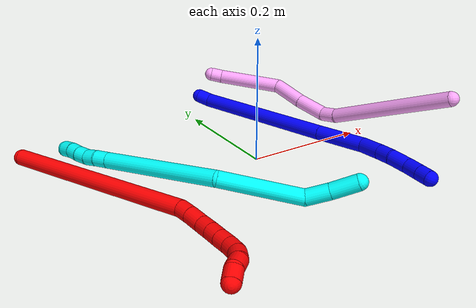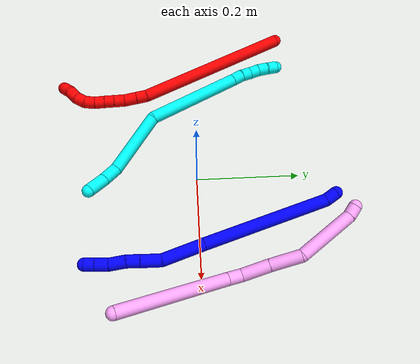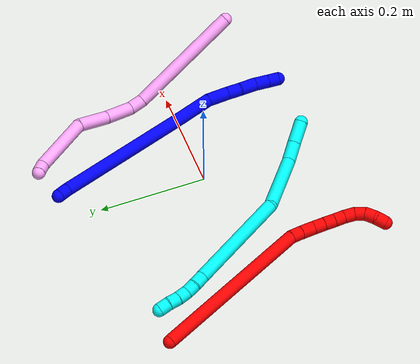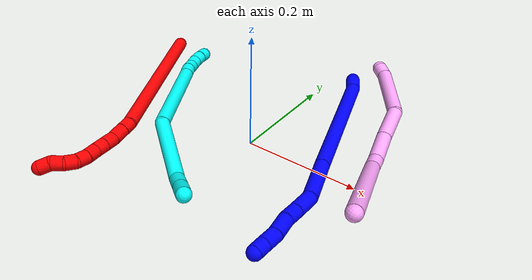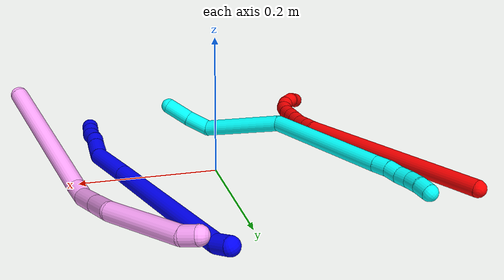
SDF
<sdf version="1.7">
 <world name="default">
  <plugin name="TubeGeneratorPlugin" filename="libtube_generator_plugin.so"/>
  <model name="photoneo_s_sensor">
   <static>1</static>
   <pose>0 0 2 1.57079 1.57079 3.14159</pose>
   <link name="link">
    <inertial><mass>0.1</mass></inertial>
    <sensor name="sensor" type="depth">
     <update_rate>30</update_rate>
     <camera>
      <horizontal_fov>1.22</horizontal_fov>
      <image><width>1920</width><height>1200</height><format>B8G8R8</format></image>
      <clip><near>0.1</near><far>4</far></clip>
      <depth_camera><output>points</output></depth_camera>
     </camera>
     <plugin name="camera_plugin" filename="libgazebo_ros_depth_camera.so">
      <baseline>0.2</baseline>
      <alwaysOn>1</alwaysOn>
      <updateRate>0.0</updateRate>
      <cameraName>camera_ir</cameraName>
      <imageTopicName>/camera/color/image_raw</imageTopicName>
      <cameraInfoTopicName>/camera/color/camera_info</cameraInfoTopicName>
      <depthImageTopicName>/camera/depth/image_raw</depthImageTopicName>
      <depthImageCameraInfoTopicName>/camera/depth/camera_info</depthImageCameraInfoTopicName>
      <pointCloudTopicName>/camera/depth/points</pointCloudTopicName>
      <frameName>fr_optical</frameName>
      <pointCloudCutoff>0.1</pointCloudCutoff>
      <pointCloudCutoffMax>2.0</pointCloudCutoffMax>
      <distortionK1>0</distortionK1>
      <distortionK2>0</distortionK2>
      <distortionK3>0</distortionK3>
      <distortionT1>0</distortionT1>
      <distortionT2>0</distortionT2>
      <CxPrime>0</CxPrime>
      <Cx>0</Cx>
      <Cy>0</Cy>
      <focalLength>0</focalLength>
      <hackBaseline>0</hackBaseline>
     </plugin>
    </sensor>
   </link>
  </model>
  <gravity>0 0 -9.8</gravity>
  <magnetic_field>6e-06 2.3e-05 -4.2e-05</magnetic_field>
  <atmosphere type="adiabatic"/>
  <physics name="default_physics" default="0" type="ode">
   <max_step_size>0.003</max_step_size>
   <real_time_factor>1</real_time_factor>
   <real_time_update_rate>1000</real_time_update_rate>
   <max_contacts>10000</max_contacts>
   <ode>
    <solver>
     <type>quick</type>
     <iters>100</iters>
     <sor>1.3</sor>
     <use_dynamic_moi_rescaling>0</use_dynamic_moi_rescaling>
    </solver>
    <constraints>
     <contact_max_correcting_vel>0</contact_max_correcting_vel>
     <contact_surface_layer>0.001</contact_surface_layer>
     <cfm>0</cfm>
     <erp>0.2</erp>
    </constraints>
   </ode>
  </physics>
  <scene><ambient>0.4 0.4 0.4 1</ambient><background>0.7 0.7 0.7 1</background><shadows>0</shadows></scene>
  <audio><device>default</device></audio>
  <spherical_coordinates>
   <surface_model>EARTH_WGS84</surface_model>
   <latitude_deg>0</latitude_deg>
   <longitude_deg>0</longitude_deg>
   <elevation>0</elevation>
   <heading_deg>0</heading_deg>
  </spherical_coordinates>
  <model name="bin">
   <static>1</static>
   <link name="bottom">
    <collision name="collision-bottom">
     <pose>0 0 -0.01 0 -0 0</pose>
     <geometry><box><size>0.8 0.6 0.02</size></box></geometry>
     <surface>
      <friction><ode><mu>100</mu><mu2>100</mu2></ode></friction>
      <contact><collide_bitmask>65535</collide_bitmask></contact>
     </surface>
    </collision>
   </link>
   <link name="west_wall">
    <collision name="collision-west_wall">
     <pose>-0.41 0 0.1 0 -0 0</pose>
     <geometry><box><size>0.02 0.6 0.2</size></box></geometry>
     <surface>
      <friction><ode><mu>100</mu><mu2>100</mu2></ode></friction>
      <contact><collide_bitmask>65535</collide_bitmask></contact>
     </surface>
    </collision>
   </link>
   <link name="east_wall">
    <collision name="collision-east_wall">
     <pose>0.41 0 0.1 0 -0 0</pose>
     <geometry><box><size>0.02 0.6 0.2</size></box></geometry>
     <surface>
      <friction><ode><mu>100</mu><mu2>100</mu2></ode></friction>
      <contact><collide_bitmask>65535</collide_bitmask></contact>
     </surface>
    </collision>
   </link>
   <link name="south_wall">
    <collision name="collision-south_wall">
     <pose>0 -0.31 0.1 0 -0 0</pose>
     <geometry><box><size>0.8 0.02 0.2</size></box></geometry>
     <surface>
      <friction><ode><mu>100</mu><mu2>100</mu2></ode></friction>
      <contact><collide_bitmask>65535</collide_bitmask></contact>
     </surface>
    </collision>
   </link>
   <link name="north_wall">
    <collision name="collision-north_wall">
     <pose>0 0.31 0.1 0 -0 0</pose>
     <geometry><box><size>0.8 0.02 0.2</size></box></geometry>
     <surface>
      <friction><ode><mu>100</mu><mu2>100</mu2></ode></friction>
      <contact><collide_bitmask>65535</collide_bitmask></contact>
     </surface>
    </collision>
   </link>
  </model>
  <model name="1">
   <static>0</static>
   <link name="1">
    <collision name="collision-cylinder-e_1_1_4">
     <pose>0.005361 -0.010749 0.000368 1.53658 0.462376 0.447342</pose>
     <geometry><cylinder><radius>0.0125</radius><length>0.024034</length></cylinder></geometry>
     <surface>
      <friction><ode><mu>1.16</mu><mu2>1.16</mu2><slip1>0</slip1><slip2>0</slip2></ode></friction>
      <contact><ode><kp>1e+06</kp><kd>1</kd><max_vel>0</max_vel><min_depth>0.001</min_depth></ode></contact>
     </surface>
    </collision>
    <visual name="visual-cylinder-e_1_1_4">
     <pose>0.005361 -0.010749 0.000368 1.53658 0.462376 0.447342</pose>
     <geometry><cylinder><radius>0.0125</radius><length>0.024034</length></cylinder></geometry>
     <material><ambient>0 0 1 1</ambient></material>
    </visual>
    <collision name="collision-cylinder-e_2_4_5">
     <pose>0.031872 -0.142898 0.021209 1.40373 0.170136 0.143946</pose>
     <geometry><cylinder><radius>0.0125</radius><length>0.249836</length></cylinder></geometry>
     <surface>
      <friction><ode><mu>1.16</mu><mu2>1.16</mu2><slip1>0</slip1><slip2>0</slip2></ode></friction>
      <contact><ode><kp>1e+06</kp><kd>1</kd><max_vel>0</max_vel><min_depth>0.001</min_depth></ode></contact>
     </surface>
    </collision>
    <visual name="visual-cylinder-e_2_4_5">
     <pose>0.031872 -0.142898 0.021209 1.40373 0.170136 0.143946</pose>
     <geometry><cylinder><radius>0.0125</radius><length>0.249836</length></cylinder></geometry>
     <material><ambient>0 0 1 1</ambient></material>
    </visual>
    <collision name="collision-cylinder-e_3_5_6">
     <pose>0.060671 -0.304733 0.048929 1.39345 0.184093 0.154161</pose>
     <geometry><cylinder><radius>0.0125</radius><length>0.083569</length></cylinder></geometry>
     <surface>
      <friction><ode><mu>1.16</mu><mu2>1.16</mu2><slip1>0</slip1><slip2>0</slip2></ode></friction>
      <contact><ode><kp>1e+06</kp><kd>1</kd><max_vel>0</max_vel><min_depth>0.001</min_depth></ode></contact>
     </surface>
    </collision>
    <visual name="visual-cylinder-e_3_5_6">
     <pose>0.060671 -0.304733 0.048929 1.39345 0.184093 0.154161</pose>
     <geometry><cylinder><radius>0.0125</radius><length>0.083569</length></cylinder></geometry>
     <material><ambient>0 0 1 1</ambient></material>
    </visual>
    <collision name="collision-cylinder-e_4_6_7">
     <pose>0.065763 -0.364668 0.05827 1.46387 -0.129669 -0.116527</pose>
     <geometry><cylinder><radius>0.0125</radius><length>0.039559</length></cylinder></geometry>
     <surface>
      <friction><ode><mu>1.16</mu><mu2>1.16</mu2><slip1>0</slip1><slip2>0</slip2></ode></friction>
      <contact><ode><kp>1e+06</kp><kd>1</kd><max_vel>0</max_vel><min_depth>0.001</min_depth></ode></contact>
     </surface>
    </collision>
    <visual name="visual-cylinder-e_4_6_7">
     <pose>0.065763 -0.364668 0.05827 1.46387 -0.129669 -0.116527</pose>
     <geometry><cylinder><radius>0.0125</radius><length>0.039559</length></cylinder></geometry>
     <material><ambient>0 0 1 1</ambient></material>
    </visual>
    <collision name="collision-cylinder-e_5_7_8">
     <pose>0.061307 -0.396482 0.061361 1.48987 -0.152446 -0.140623</pose>
     <geometry><cylinder><radius>0.0125</radius><length>0.024995</length></cylinder></geometry>
     <surface>
      <friction><ode><mu>1.16</mu><mu2>1.16</mu2><slip1>0</slip1><slip2>0</slip2></ode></friction>
      <contact><ode><kp>1e+06</kp><kd>1</kd><max_vel>0</max_vel><min_depth>0.001</min_depth></ode></contact>
     </surface>
    </collision>
    <visual name="visual-cylinder-e_5_7_8">
     <pose>0.061307 -0.396482 0.061361 1.48987 -0.152446 -0.140623</pose>
     <geometry><cylinder><radius>0.0125</radius><length>0.024995</length></cylinder></geometry>
     <material><ambient>0 0 1 1</ambient></material>
    </visual>
    <collision name="collision-cylinder-e_6_8_9">
     <pose>0.059817 -0.424702 0.062346 1.57167 0.025596 0.025618</pose>
     <geometry><cylinder><radius>0.0125</radius><length>0.031825</length></cylinder></geometry>
     <surface>
      <friction><ode><mu>1.16</mu><mu2>1.16</mu2><slip1>0</slip1><slip2>0</slip2></ode></friction>
      <contact><ode><kp>1e+06</kp><kd>1</kd><max_vel>0</max_vel><min_depth>0.001</min_depth></ode></contact>
     </surface>
    </collision>
    <visual name="visual-cylinder-e_6_8_9">
     <pose>0.059817 -0.424702 0.062346 1.57167 0.025596 0.025618</pose>
     <geometry><cylinder><radius>0.0125</radius><length>0.031825</length></cylinder></geometry>
     <material><ambient>0 0 1 1</ambient></material>
    </visual>
    <collision name="collision-cylinder-e_7_9_10">
     <pose>0.058121 -0.453328 0.062349 1.56946 -0.163841 -0.163623</pose>
     <geometry><cylinder><radius>0.0125</radius><length>0.025783</length></cylinder></geometry>
     <surface>
      <friction><ode><mu>1.16</mu><mu2>1.16</mu2><slip1>0</slip1><slip2>0</slip2></ode></friction>
      <contact><ode><kp>1e+06</kp><kd>1</kd><max_vel>0</max_vel><min_depth>0.001</min_depth></ode></contact>
     </surface>
    </collision>
    <visual name="visual-cylinder-e_7_9_10">
     <pose>0.058121 -0.453328 0.062349 1.56946 -0.163841 -0.163623</pose>
     <geometry><cylinder><radius>0.0125</radius><length>0.025783</length></cylinder></geometry>
     <material><ambient>0 0 1 1</ambient></material>
    </visual>
    <collision name="collision-cylinder-e_8_10_2">
     <pose>0.054496 -0.476131 0.062365 1.57093 -0.149831 -0.149852</pose>
     <geometry><cylinder><radius>0.0125</radius><length>0.020398</length></cylinder></geometry>
     <surface>
      <friction><ode><mu>1.16</mu><mu2>1.16</mu2><slip1>0</slip1><slip2>0</slip2></ode></friction>
      <contact><ode><kp>1e+06</kp><kd>1</kd><max_vel>0</max_vel><min_depth>0.001</min_depth></ode></contact>
     </surface>
    </collision>
    <visual name="visual-cylinder-e_8_10_2">
     <pose>0.054496 -0.476131 0.062365 1.57093 -0.149831 -0.149852</pose>
     <geometry><cylinder><radius>0.0125</radius><length>0.020398</length></cylinder></geometry>
     <material><ambient>0 0 1 1</ambient></material>
    </visual>
    <collision name="collision-sphere-2">
     <pose>0.052974 -0.486216 0.062363 0 -0 0</pose>
     <geometry><sphere><radius>0.0125</radius></sphere></geometry>
     <surface>
      <friction><ode><mu>1.16</mu><mu2>1.16</mu2><slip1>0</slip1><slip2>0</slip2></ode></friction>
      <contact><ode><kp>1e+06</kp><kd>1</kd><max_vel>0</max_vel><min_depth>0.001</min_depth></ode></contact>
     </surface>
    </collision>
    <visual name="visual-sphere-2">
     <pose>0.052974 -0.486216 0.062363 0 -0 0</pose>
     <geometry><sphere><radius>0.0125</radius></sphere></geometry>
     <material><ambient>0 0 1 1</ambient></material>
    </visual>
    <collision name="collision-sphere-10">
     <pose>0.056018 -0.466047 0.062366 0 -0 0</pose>
     <geometry><sphere><radius>0.0125</radius></sphere></geometry>
     <surface>
      <friction><ode><mu>1.16</mu><mu2>1.16</mu2><slip1>0</slip1><slip2>0</slip2></ode></friction>
      <contact><ode><kp>1e+06</kp><kd>1</kd><max_vel>0</max_vel><min_depth>0.001</min_depth></ode></contact>
     </surface>
    </collision>
    <visual name="visual-sphere-10">
     <pose>0.056018 -0.466047 0.062366 0 -0 0</pose>
     <geometry><sphere><radius>0.0125</radius></sphere></geometry>
     <material><ambient>0 0 1 1</ambient></material>
    </visual>
    <collision name="collision-sphere-9">
     <pose>0.060224 -0.440609 0.062332 0 -0 0</pose>
     <geometry><sphere><radius>0.0125</radius></sphere></geometry>
     <surface>
      <friction><ode><mu>1.16</mu><mu2>1.16</mu2><slip1>0</slip1><slip2>0</slip2></ode></friction>
      <contact><ode><kp>1e+06</kp><kd>1</kd><max_vel>0</max_vel><min_depth>0.001</min_depth></ode></contact>
     </surface>
    </collision>
    <visual name="visual-sphere-9">
     <pose>0.060224 -0.440609 0.062332 0 -0 0</pose>
     <geometry><sphere><radius>0.0125</radius></sphere></geometry>
     <material><ambient>0 0 1 1</ambient></material>
    </visual>
    <collision name="collision-sphere-4">
     <pose>0.010721 -0.021498 0.000736 0 -0 0</pose>
     <geometry><sphere><radius>0.0125</radius></sphere></geometry>
     <surface>
      <friction><ode><mu>1.16</mu><mu2>1.16</mu2><slip1>0</slip1><slip2>0</slip2></ode></friction>
      <contact><ode><kp>1e+06</kp><kd>1</kd><max_vel>0</max_vel><min_depth>0.001</min_depth></ode></contact>
     </surface>
    </collision>
    <visual name="visual-sphere-4">
     <pose>0.010721 -0.021498 0.000736 0 -0 0</pose>
     <geometry><sphere><radius>0.0125</radius></sphere></geometry>
     <material><ambient>0 0 1 1</ambient></material>
    </visual>
    <collision name="collision-sphere-1">
     <geometry><sphere><radius>0.0125</radius></sphere></geometry>
     <surface>
      <friction><ode><mu>1.16</mu><mu2>1.16</mu2><slip1>0</slip1><slip2>0</slip2></ode></friction>
      <contact><ode><kp>1e+06</kp><kd>1</kd><max_vel>0</max_vel><min_depth>0.001</min_depth></ode></contact>
     </surface>
    </collision>
    <visual name="visual-sphere-1">
     <geometry><sphere><radius>0.0125</radius></sphere></geometry>
     <material><ambient>0 0 1 1</ambient></material>
    </visual>
    <collision name="collision-sphere-8">
     <pose>0.059409 -0.408795 0.06236 0 -0 0</pose>
     <geometry><sphere><radius>0.0125</radius></sphere></geometry>
     <surface>
      <friction><ode><mu>1.16</mu><mu2>1.16</mu2><slip1>0</slip1><slip2>0</slip2></ode></friction>
      <contact><ode><kp>1e+06</kp><kd>1</kd><max_vel>0</max_vel><min_depth>0.001</min_depth></ode></contact>
     </surface>
    </collision>
    <visual name="visual-sphere-8">
     <pose>0.059409 -0.408795 0.06236 0 -0 0</pose>
     <geometry><sphere><radius>0.0125</radius></sphere></geometry>
     <material><ambient>0 0 1 1</ambient></material>
    </visual>
    <collision name="collision-sphere-5">
     <pose>0.053023 -0.264298 0.041682 0 -0 0</pose>
     <geometry><sphere><radius>0.0125</radius></sphere></geometry>
     <surface>
      <friction><ode><mu>1.16</mu><mu2>1.16</mu2><slip1>0</slip1><slip2>0</slip2></ode></friction>
      <contact><ode><kp>1e+06</kp><kd>1</kd><max_vel>0</max_vel><min_depth>0.001</min_depth></ode></contact>
     </surface>
    </collision>
    <visual name="visual-sphere-5">
     <pose>0.053023 -0.264298 0.041682 0 -0 0</pose>
     <geometry><sphere><radius>0.0125</radius></sphere></geometry>
     <material><ambient>0 0 1 1</ambient></material>
    </visual>
    <collision name="collision-sphere-6">
     <pose>0.06832 -0.345167 0.056176 0 -0 0</pose>
     <geometry><sphere><radius>0.0125</radius></sphere></geometry>
     <surface>
      <friction><ode><mu>1.16</mu><mu2>1.16</mu2><slip1>0</slip1><slip2>0</slip2></ode></friction>
      <contact><ode><kp>1e+06</kp><kd>1</kd><max_vel>0</max_vel><min_depth>0.001</min_depth></ode></contact>
     </surface>
    </collision>
    <visual name="visual-sphere-6">
     <pose>0.06832 -0.345167 0.056176 0 -0 0</pose>
     <geometry><sphere><radius>0.0125</radius></sphere></geometry>
     <material><ambient>0 0 1 1</ambient></material>
    </visual>
    <collision name="collision-sphere-7">
     <pose>0.063205 -0.38417 0.060363 0 -0 0</pose>
     <geometry><sphere><radius>0.0125</radius></sphere></geometry>
     <surface>
      <friction><ode><mu>1.16</mu><mu2>1.16</mu2><slip1>0</slip1><slip2>0</slip2></ode></friction>
      <contact><ode><kp>1e+06</kp><kd>1</kd><max_vel>0</max_vel><min_depth>0.001</min_depth></ode></contact>
     </surface>
    </collision>
    <visual name="visual-sphere-7">
     <pose>0.063205 -0.38417 0.060363 0 -0 0</pose>
     <geometry><sphere><radius>0.0125</radius></sphere></geometry>
     <material><ambient>0 0 1 1</ambient></material>
    </visual>
    <inertial>
     <pose>0.043619 -0.241357 0.036198 0 -0 0</pose>
     <mass>0.5</mass>
     <inertia>
      <ixx>0.001542</ixx>
      <ixy>0</ixy>
      <ixz>0</ixz>
      <iyy>0.000413</iyy>
      <iyz>0</iyz>
      <izz>0.001116</izz>
     </inertia>
    </inertial>
   </link>
   <pose>0.046275 0.26545 0.01687 0.090725 0.408177 0.131622</pose>
  </model>
  <model name="2">
   <static>0</static>
   <link name="2">
    <collision name="collision-cylinder-e_1_1_4">
     <pose>0.061916 -0.116553 -0.082321 2.18574 0.409393 0.762384</pose>
     <geometry><cylinder><radius>0.0125</radius><length>0.311094</length></cylinder></geometry>
     <surface>
      <friction><ode><mu>1.16</mu><mu2>1.16</mu2><slip1>0</slip1><slip2>0</slip2></ode></friction>
      <contact><ode><kp>1e+06</kp><kd>1</kd><max_vel>0</max_vel><min_depth>0.001</min_depth></ode></contact>
     </surface>
    </collision>
    <visual name="visual-cylinder-e_1_1_4">
     <pose>0.061916 -0.116553 -0.082321 2.18574 0.409393 0.762384</pose>
     <geometry><cylinder><radius>0.0125</radius><length>0.311094</length></cylinder></geometry>
     <material><ambient>1 0 0 1</ambient></material>
    </visual>
    <collision name="collision-cylinder-e_2_4_5">
     <pose>0.128527 -0.238697 -0.17208 2.497 0.467362 1.23852</pose>
     <geometry><cylinder><radius>0.0125</radius><length>0.020845</length></cylinder></geometry>
     <surface>
      <friction><ode><mu>1.16</mu><mu2>1.16</mu2><slip1>0</slip1><slip2>0</slip2></ode></friction>
      <contact><ode><kp>1e+06</kp><kd>1</kd><max_vel>0</max_vel><min_depth>0.001</min_depth></ode></contact>
     </surface>
    </collision>
    <visual name="visual-cylinder-e_2_4_5">
     <pose>0.128527 -0.238697 -0.17208 2.497 0.467362 1.23852</pose>
     <geometry><cylinder><radius>0.0125</radius><length>0.020845</length></cylinder></geometry>
     <material><ambient>1 0 0 1</ambient></material>
    </visual>
    <collision name="collision-cylinder-e_3_5_6">
     <pose>0.139488 -0.250776 -0.188716 2.52726 0.507859 1.37146</pose>
     <geometry><cylinder><radius>0.0125</radius><length>0.025766</length></cylinder></geometry>
     <surface>
      <friction><ode><mu>1.16</mu><mu2>1.16</mu2><slip1>0</slip1><slip2>0</slip2></ode></friction>
      <contact><ode><kp>1e+06</kp><kd>1</kd><max_vel>0</max_vel><min_depth>0.001</min_depth></ode></contact>
     </surface>
    </collision>
    <visual name="visual-cylinder-e_3_5_6">
     <pose>0.139488 -0.250776 -0.188716 2.52726 0.507859 1.37146</pose>
     <geometry><cylinder><radius>0.0125</radius><length>0.025766</length></cylinder></geometry>
     <material><ambient>1 0 0 1</ambient></material>
    </visual>
    <collision name="collision-cylinder-e_4_6_7">
     <pose>0.14972 -0.262336 -0.206417 2.60385 0.381136 1.22159</pose>
     <geometry><cylinder><radius>0.0125</radius><length>0.02133</length></cylinder></geometry>
     <surface>
      <friction><ode><mu>1.16</mu><mu2>1.16</mu2><slip1>0</slip1><slip2>0</slip2></ode></friction>
      <contact><ode><kp>1e+06</kp><kd>1</kd><max_vel>0</max_vel><min_depth>0.001</min_depth></ode></contact>
     </surface>
    </collision>
    <visual name="visual-cylinder-e_4_6_7">
     <pose>0.14972 -0.262336 -0.206417 2.60385 0.381136 1.22159</pose>
     <geometry><cylinder><radius>0.0125</radius><length>0.02133</length></cylinder></geometry>
     <material><ambient>1 0 0 1</ambient></material>
    </visual>
    <collision name="collision-cylinder-e_5_7_8">
     <pose>0.157588 -0.272002 -0.222978 2.62328 0.398007 1.30062</pose>
     <geometry><cylinder><radius>0.0125</radius><length>0.020126</length></cylinder></geometry>
     <surface>
      <friction><ode><mu>1.16</mu><mu2>1.16</mu2><slip1>0</slip1><slip2>0</slip2></ode></friction>
      <contact><ode><kp>1e+06</kp><kd>1</kd><max_vel>0</max_vel><min_depth>0.001</min_depth></ode></contact>
     </surface>
    </collision>
    <visual name="visual-cylinder-e_5_7_8">
     <pose>0.157588 -0.272002 -0.222978 2.62328 0.398007 1.30062</pose>
     <geometry><cylinder><radius>0.0125</radius><length>0.020126</length></cylinder></geometry>
     <material><ambient>1 0 0 1</ambient></material>
    </visual>
    <collision name="collision-cylinder-e_6_8_9">
     <pose>0.165439 -0.281411 -0.238871 2.59072 0.405829 1.25854</pose>
     <geometry><cylinder><radius>0.0125</radius><length>0.020019</length></cylinder></geometry>
     <surface>
      <friction><ode><mu>1.16</mu><mu2>1.16</mu2><slip1>0</slip1><slip2>0</slip2></ode></friction>
      <contact><ode><kp>1e+06</kp><kd>1</kd><max_vel>0</max_vel><min_depth>0.001</min_depth></ode></contact>
     </surface>
    </collision>
    <visual name="visual-cylinder-e_6_8_9">
     <pose>0.165439 -0.281411 -0.238871 2.59072 0.405829 1.25854</pose>
     <geometry><cylinder><radius>0.0125</radius><length>0.020019</length></cylinder></geometry>
     <material><ambient>1 0 0 1</ambient></material>
    </visual>
    <collision name="collision-cylinder-e_7_9_10">
     <pose>0.17241 -0.2901 -0.255872 2.74152 0.294619 1.26359</pose>
     <geometry><cylinder><radius>0.0125</radius><length>0.020796</length></cylinder></geometry>
     <surface>
      <friction><ode><mu>1.16</mu><mu2>1.16</mu2><slip1>0</slip1><slip2>0</slip2></ode></friction>
      <contact><ode><kp>1e+06</kp><kd>1</kd><max_vel>0</max_vel><min_depth>0.001</min_depth></ode></contact>
     </surface>
    </collision>
    <visual name="visual-cylinder-e_7_9_10">
     <pose>0.17241 -0.2901 -0.255872 2.74152 0.294619 1.26359</pose>
     <geometry><cylinder><radius>0.0125</radius><length>0.020796</length></cylinder></geometry>
     <material><ambient>1 0 0 1</ambient></material>
    </visual>
    <collision name="collision-cylinder-e_8_10_11">
     <pose>0.176909 -0.294258 -0.27493 3.11306 0.148371 2.76226</pose>
     <geometry><cylinder><radius>0.0125</radius><length>0.020016</length></cylinder></geometry>
     <surface>
      <friction><ode><mu>1.16</mu><mu2>1.16</mu2><slip1>0</slip1><slip2>0</slip2></ode></friction>
      <contact><ode><kp>1e+06</kp><kd>1</kd><max_vel>0</max_vel><min_depth>0.001</min_depth></ode></contact>
     </surface>
    </collision>
    <visual name="visual-cylinder-e_8_10_11">
     <pose>0.176909 -0.294258 -0.27493 3.11306 0.148371 2.76226</pose>
     <geometry><cylinder><radius>0.0125</radius><length>0.020016</length></cylinder></geometry>
     <material><ambient>1 0 0 1</ambient></material>
    </visual>
    <collision name="collision-cylinder-e_9_11_12">
     <pose>0.179163 -0.291232 -0.294231 -2.80346 0.07753 -0.446835</pose>
     <geometry><cylinder><radius>0.0125</radius><length>0.020004</length></cylinder></geometry>
     <surface>
      <friction><ode><mu>1.16</mu><mu2>1.16</mu2><slip1>0</slip1><slip2>0</slip2></ode></friction>
      <contact><ode><kp>1e+06</kp><kd>1</kd><max_vel>0</max_vel><min_depth>0.001</min_depth></ode></contact>
     </surface>
    </collision>
    <visual name="visual-cylinder-e_9_11_12">
     <pose>0.179163 -0.291232 -0.294231 -2.80346 0.07753 -0.446835</pose>
     <geometry><cylinder><radius>0.0125</radius><length>0.020004</length></cylinder></geometry>
     <material><ambient>1 0 0 1</ambient></material>
    </visual>
    <collision name="collision-cylinder-e_10_12_2">
     <pose>0.184646 -0.284558 -0.311797 -2.7503 0.490057 -1.80123</pose>
     <geometry><cylinder><radius>0.0125</radius><length>0.020005</length></cylinder></geometry>
     <surface>
      <friction><ode><mu>1.16</mu><mu2>1.16</mu2><slip1>0</slip1><slip2>0</slip2></ode></friction>
      <contact><ode><kp>1e+06</kp><kd>1</kd><max_vel>0</max_vel><min_depth>0.001</min_depth></ode></contact>
     </surface>
    </collision>
    <visual name="visual-cylinder-e_10_12_2">
     <pose>0.184646 -0.284558 -0.311797 -2.7503 0.490057 -1.80123</pose>
     <geometry><cylinder><radius>0.0125</radius><length>0.020005</length></cylinder></geometry>
     <material><ambient>1 0 0 1</ambient></material>
    </visual>
    <collision name="collision-sphere-2">
     <pose>0.189354 -0.281193 -0.319955 0 -0 0</pose>
     <geometry><sphere><radius>0.0125</radius></sphere></geometry>
     <surface>
      <friction><ode><mu>1.16</mu><mu2>1.16</mu2><slip1>0</slip1><slip2>0</slip2></ode></friction>
      <contact><ode><kp>1e+06</kp><kd>1</kd><max_vel>0</max_vel><min_depth>0.001</min_depth></ode></contact>
     </surface>
    </collision>
    <visual name="visual-sphere-2">
     <pose>0.189354 -0.281193 -0.319955 0 -0 0</pose>
     <geometry><sphere><radius>0.0125</radius></sphere></geometry>
     <material><ambient>1 0 0 1</ambient></material>
    </visual>
    <collision name="collision-sphere-12">
     <pose>0.179938 -0.287924 -0.303638 0 -0 0</pose>
     <geometry><sphere><radius>0.0125</radius></sphere></geometry>
     <surface>
      <friction><ode><mu>1.16</mu><mu2>1.16</mu2><slip1>0</slip1><slip2>0</slip2></ode></friction>
      <contact><ode><kp>1e+06</kp><kd>1</kd><max_vel>0</max_vel><min_depth>0.001</min_depth></ode></contact>
     </surface>
    </collision>
    <visual name="visual-sphere-12">
     <pose>0.179938 -0.287924 -0.303638 0 -0 0</pose>
     <geometry><sphere><radius>0.0125</radius></sphere></geometry>
     <material><ambient>1 0 0 1</ambient></material>
    </visual>
    <collision name="collision-sphere-11">
     <pose>0.178388 -0.29454 -0.284824 0 -0 0</pose>
     <geometry><sphere><radius>0.0125</radius></sphere></geometry>
     <surface>
      <friction><ode><mu>1.16</mu><mu2>1.16</mu2><slip1>0</slip1><slip2>0</slip2></ode></friction>
      <contact><ode><kp>1e+06</kp><kd>1</kd><max_vel>0</max_vel><min_depth>0.001</min_depth></ode></contact>
     </surface>
    </collision>
    <visual name="visual-sphere-11">
     <pose>0.178388 -0.29454 -0.284824 0 -0 0</pose>
     <geometry><sphere><radius>0.0125</radius></sphere></geometry>
     <material><ambient>1 0 0 1</ambient></material>
    </visual>
    <collision name="collision-sphere-10">
     <pose>0.175429 -0.293975 -0.265036 0 -0 0</pose>
     <geometry><sphere><radius>0.0125</radius></sphere></geometry>
     <surface>
      <friction><ode><mu>1.16</mu><mu2>1.16</mu2><slip1>0</slip1><slip2>0</slip2></ode></friction>
      <contact><ode><kp>1e+06</kp><kd>1</kd><max_vel>0</max_vel><min_depth>0.001</min_depth></ode></contact>
     </surface>
    </collision>
    <visual name="visual-sphere-10">
     <pose>0.175429 -0.293975 -0.265036 0 -0 0</pose>
     <geometry><sphere><radius>0.0125</radius></sphere></geometry>
     <material><ambient>1 0 0 1</ambient></material>
    </visual>
    <collision name="collision-sphere-9">
     <pose>0.169391 -0.286225 -0.246707 0 -0 0</pose>
     <geometry><sphere><radius>0.0125</radius></sphere></geometry>
     <surface>
      <friction><ode><mu>1.16</mu><mu2>1.16</mu2><slip1>0</slip1><slip2>0</slip2></ode></friction>
      <contact><ode><kp>1e+06</kp><kd>1</kd><max_vel>0</max_vel><min_depth>0.001</min_depth></ode></contact>
     </surface>
    </collision>
    <visual name="visual-sphere-9">
     <pose>0.169391 -0.286225 -0.246707 0 -0 0</pose>
     <geometry><sphere><radius>0.0125</radius></sphere></geometry>
     <material><ambient>1 0 0 1</ambient></material>
    </visual>
    <collision name="collision-sphere-4">
     <pose>0.123832 -0.233106 -0.164642 0 -0 0</pose>
     <geometry><sphere><radius>0.0125</radius></sphere></geometry>
     <surface>
      <friction><ode><mu>1.16</mu><mu2>1.16</mu2><slip1>0</slip1><slip2>0</slip2></ode></friction>
      <contact><ode><kp>1e+06</kp><kd>1</kd><max_vel>0</max_vel><min_depth>0.001</min_depth></ode></contact>
     </surface>
    </collision>
    <visual name="visual-sphere-4">
     <pose>0.123832 -0.233106 -0.164642 0 -0 0</pose>
     <geometry><sphere><radius>0.0125</radius></sphere></geometry>
     <material><ambient>1 0 0 1</ambient></material>
    </visual>
    <collision name="collision-sphere-1">
     <geometry><sphere><radius>0.0125</radius></sphere></geometry>
     <surface>
      <friction><ode><mu>1.16</mu><mu2>1.16</mu2><slip1>0</slip1><slip2>0</slip2></ode></friction>
      <contact><ode><kp>1e+06</kp><kd>1</kd><max_vel>0</max_vel><min_depth>0.001</min_depth></ode></contact>
     </surface>
    </collision>
    <visual name="visual-sphere-1">
     <geometry><sphere><radius>0.0125</radius></sphere></geometry>
     <material><ambient>1 0 0 1</ambient></material>
    </visual>
    <collision name="collision-sphere-8">
     <pose>0.161488 -0.276597 -0.231036 0 -0 0</pose>
     <geometry><sphere><radius>0.0125</radius></sphere></geometry>
     <surface>
      <friction><ode><mu>1.16</mu><mu2>1.16</mu2><slip1>0</slip1><slip2>0</slip2></ode></friction>
      <contact><ode><kp>1e+06</kp><kd>1</kd><max_vel>0</max_vel><min_depth>0.001</min_depth></ode></contact>
     </surface>
    </collision>
    <visual name="visual-sphere-8">
     <pose>0.161488 -0.276597 -0.231036 0 -0 0</pose>
     <geometry><sphere><radius>0.0125</radius></sphere></geometry>
     <material><ambient>1 0 0 1</ambient></material>
    </visual>
    <collision name="collision-sphere-5">
     <pose>0.133223 -0.244288 -0.179517 0 -0 0</pose>
     <geometry><sphere><radius>0.0125</radius></sphere></geometry>
     <surface>
      <friction><ode><mu>1.16</mu><mu2>1.16</mu2><slip1>0</slip1><slip2>0</slip2></ode></friction>
      <contact><ode><kp>1e+06</kp><kd>1</kd><max_vel>0</max_vel><min_depth>0.001</min_depth></ode></contact>
     </surface>
    </collision>
    <visual name="visual-sphere-5">
     <pose>0.133223 -0.244288 -0.179517 0 -0 0</pose>
     <geometry><sphere><radius>0.0125</radius></sphere></geometry>
     <material><ambient>1 0 0 1</ambient></material>
    </visual>
    <collision name="collision-sphere-6">
     <pose>0.145753 -0.257265 -0.197915 0 -0 0</pose>
     <geometry><sphere><radius>0.0125</radius></sphere></geometry>
     <surface>
      <friction><ode><mu>1.16</mu><mu2>1.16</mu2><slip1>0</slip1><slip2>0</slip2></ode></friction>
      <contact><ode><kp>1e+06</kp><kd>1</kd><max_vel>0</max_vel><min_depth>0.001</min_depth></ode></contact>
     </surface>
    </collision>
    <visual name="visual-sphere-6">
     <pose>0.145753 -0.257265 -0.197915 0 -0 0</pose>
     <geometry><sphere><radius>0.0125</radius></sphere></geometry>
     <material><ambient>1 0 0 1</ambient></material>
    </visual>
    <collision name="collision-sphere-7">
     <pose>0.153688 -0.267406 -0.21492 0 -0 0</pose>
     <geometry><sphere><radius>0.0125</radius></sphere></geometry>
     <surface>
      <friction><ode><mu>1.16</mu><mu2>1.16</mu2><slip1>0</slip1><slip2>0</slip2></ode></friction>
      <contact><ode><kp>1e+06</kp><kd>1</kd><max_vel>0</max_vel><min_depth>0.001</min_depth></ode></contact>
     </surface>
    </collision>
    <visual name="visual-sphere-7">
     <pose>0.153688 -0.267406 -0.21492 0 -0 0</pose>
     <geometry><sphere><radius>0.0125</radius></sphere></geometry>
     <material><ambient>1 0 0 1</ambient></material>
    </visual>
    <inertial>
     <pose>0.099232 -0.175681 -0.141357 0 -0 0</pose>
     <mass>0.5</mass>
     <inertia>
      <ixx>0.003294</ixx>
      <ixy>0</ixy>
      <ixz>0</ixz>
      <iyy>0.001097</iyy>
      <iyz>0</iyz>
      <izz>0.000859</izz>
     </inertia>
    </inertial>
   </link>
   <pose>-0.32141 0.184084 0.012292 -2.26447 1.1486 -1.20263</pose>
  </model>
  <model name="3">
   <static>0</static>
   <link name="3">
    <collision name="collision-cylinder-e_1_1_4">
     <pose>-0.002316 0.004378 -0.020471 -2.93088 -0.110182 0.961397</pose>
     <geometry><cylinder><radius>0.0125</radius><length>0.042123</length></cylinder></geometry>
     <surface>
      <friction><ode><mu>1.16</mu><mu2>1.16</mu2><slip1>0</slip1><slip2>0</slip2></ode></friction>
      <contact><ode><kp>1e+06</kp><kd>1</kd><max_vel>0</max_vel><min_depth>0.001</min_depth></ode></contact>
     </surface>
    </collision>
    <visual name="visual-cylinder-e_1_1_4">
     <pose>-0.002316 0.004378 -0.020471 -2.93088 -0.110182 0.961397</pose>
     <geometry><cylinder><radius>0.0125</radius><length>0.042123</length></cylinder></geometry>
     <material><ambient>0.003922 1 0.996078 1</ambient></material>
    </visual>
    <collision name="collision-cylinder-e_2_4_5">
     <pose>-0.008019 0.013602 -0.058581 -2.8735 -0.183079 1.19531</pose>
     <geometry><cylinder><radius>0.0125</radius><length>0.037207</length></cylinder></geometry>
     <surface>
      <friction><ode><mu>1.16</mu><mu2>1.16</mu2><slip1>0</slip1><slip2>0</slip2></ode></friction>
      <contact><ode><kp>1e+06</kp><kd>1</kd><max_vel>0</max_vel><min_depth>0.001</min_depth></ode></contact>
     </surface>
    </collision>
    <visual name="visual-cylinder-e_2_4_5">
     <pose>-0.008019 0.013602 -0.058581 -2.8735 -0.183079 1.19531</pose>
     <geometry><cylinder><radius>0.0125</radius><length>0.037207</length></cylinder></geometry>
     <material><ambient>0.003922 1 0.996078 1</ambient></material>
    </visual>
    <collision name="collision-cylinder-e_3_5_6">
     <pose>-0.0389 0.057071 -0.118141 -2.39711 -0.449421 1.05926</pose>
     <geometry><cylinder><radius>0.0125</radius><length>0.126571</length></cylinder></geometry>
     <surface>
      <friction><ode><mu>1.16</mu><mu2>1.16</mu2><slip1>0</slip1><slip2>0</slip2></ode></friction>
      <contact><ode><kp>1e+06</kp><kd>1</kd><max_vel>0</max_vel><min_depth>0.001</min_depth></ode></contact>
     </surface>
    </collision>
    <visual name="visual-cylinder-e_3_5_6">
     <pose>-0.0389 0.057071 -0.118141 -2.39711 -0.449421 1.05926</pose>
     <geometry><cylinder><radius>0.0125</radius><length>0.126571</length></cylinder></geometry>
     <material><ambient>0.003922 1 0.996078 1</ambient></material>
    </visual>
    <collision name="collision-cylinder-e_4_6_7">
     <pose>-0.06285 0.154994 -0.235381 -2.47464 0.036952 -0.106582</pose>
     <geometry><cylinder><radius>0.0125</radius><length>0.191853</length></cylinder></geometry>
     <surface>
      <friction><ode><mu>1.16</mu><mu2>1.16</mu2><slip1>0</slip1><slip2>0</slip2></ode></friction>
      <contact><ode><kp>1e+06</kp><kd>1</kd><max_vel>0</max_vel><min_depth>0.001</min_depth></ode></contact>
     </surface>
    </collision>
    <visual name="visual-cylinder-e_4_6_7">
     <pose>-0.06285 0.154994 -0.235381 -2.47464 0.036952 -0.106582</pose>
     <geometry><cylinder><radius>0.0125</radius><length>0.191853</length></cylinder></geometry>
     <material><ambient>0.003922 1 0.996078 1</ambient></material>
    </visual>
    <collision name="collision-cylinder-e_5_7_8">
     <pose>-0.059227 0.221246 -0.319318 -2.46262 0.007134 -0.020199</pose>
     <geometry><cylinder><radius>0.0125</radius><length>0.022147</length></cylinder></geometry>
     <surface>
      <friction><ode><mu>1.16</mu><mu2>1.16</mu2><slip1>0</slip1><slip2>0</slip2></ode></friction>
      <contact><ode><kp>1e+06</kp><kd>1</kd><max_vel>0</max_vel><min_depth>0.001</min_depth></ode></contact>
     </surface>
    </collision>
    <visual name="visual-cylinder-e_5_7_8">
     <pose>-0.059227 0.221246 -0.319318 -2.46262 0.007134 -0.020199</pose>
     <geometry><cylinder><radius>0.0125</radius><length>0.022147</length></cylinder></geometry>
     <material><ambient>0.003922 1 0.996078 1</ambient></material>
    </visual>
    <collision name="collision-cylinder-e_6_8_9">
     <pose>-0.057463 0.233926 -0.335985 -2.52332 0.168978 -0.518423</pose>
     <geometry><cylinder><radius>0.0125</radius><length>0.020043</length></cylinder></geometry>
     <surface>
      <friction><ode><mu>1.16</mu><mu2>1.16</mu2><slip1>0</slip1><slip2>0</slip2></ode></friction>
      <contact><ode><kp>1e+06</kp><kd>1</kd><max_vel>0</max_vel><min_depth>0.001</min_depth></ode></contact>
     </surface>
    </collision>
    <visual name="visual-cylinder-e_6_8_9">
     <pose>-0.057463 0.233926 -0.335985 -2.52332 0.168978 -0.518423</pose>
     <geometry><cylinder><radius>0.0125</radius><length>0.020043</length></cylinder></geometry>
     <material><ambient>0.003922 1 0.996078 1</ambient></material>
    </visual>
    <collision name="collision-cylinder-e_7_9_10">
     <pose>-0.054241 0.246717 -0.350967 -2.34669 0.154021 -0.363568</pose>
     <geometry><cylinder><radius>0.0125</radius><length>0.020032</length></cylinder></geometry>
     <surface>
      <friction><ode><mu>1.16</mu><mu2>1.16</mu2><slip1>0</slip1><slip2>0</slip2></ode></friction>
      <contact><ode><kp>1e+06</kp><kd>1</kd><max_vel>0</max_vel><min_depth>0.001</min_depth></ode></contact>
     </surface>
    </collision>
    <visual name="visual-cylinder-e_7_9_10">
     <pose>-0.054241 0.246717 -0.350967 -2.34669 0.154021 -0.363568</pose>
     <geometry><cylinder><radius>0.0125</radius><length>0.020032</length></cylinder></geometry>
     <material><ambient>0.003922 1 0.996078 1</ambient></material>
    </visual>
    <collision name="collision-cylinder-e_8_10_11">
     <pose>-0.049916 0.261028 -0.364207 -2.28711 0.282409 -0.605263</pose>
     <geometry><cylinder><radius>0.0125</radius><length>0.020008</length></cylinder></geometry>
     <surface>
      <friction><ode><mu>1.16</mu><mu2>1.16</mu2><slip1>0</slip1><slip2>0</slip2></ode></friction>
      <contact><ode><kp>1e+06</kp><kd>1</kd><max_vel>0</max_vel><min_depth>0.001</min_depth></ode></contact>
     </surface>
    </collision>
    <visual name="visual-cylinder-e_8_10_11">
     <pose>-0.049916 0.261028 -0.364207 -2.28711 0.282409 -0.605263</pose>
     <geometry><cylinder><radius>0.0125</radius><length>0.020008</length></cylinder></geometry>
     <material><ambient>0.003922 1 0.996078 1</ambient></material>
    </visual>
    <collision name="collision-cylinder-e_9_11_2">
     <pose>-0.044041 0.274403 -0.377801 -2.44231 0.31356 -0.818153</pose>
     <geometry><cylinder><radius>0.0125</radius><length>0.020016</length></cylinder></geometry>
     <surface>
      <friction><ode><mu>1.16</mu><mu2>1.16</mu2><slip1>0</slip1><slip2>0</slip2></ode></friction>
      <contact><ode><kp>1e+06</kp><kd>1</kd><max_vel>0</max_vel><min_depth>0.001</min_depth></ode></contact>
     </surface>
    </collision>
    <visual name="visual-cylinder-e_9_11_2">
     <pose>-0.044041 0.274403 -0.377801 -2.44231 0.31356 -0.818153</pose>
     <geometry><cylinder><radius>0.0125</radius><length>0.020016</length></cylinder></geometry>
     <material><ambient>0.003922 1 0.996078 1</ambient></material>
    </visual>
    <collision name="collision-sphere-2">
     <pose>-0.040955 0.28053 -0.385087 0 -0 0</pose>
     <geometry><sphere><radius>0.0125</radius></sphere></geometry>
     <surface>
      <friction><ode><mu>1.16</mu><mu2>1.16</mu2><slip1>0</slip1><slip2>0</slip2></ode></friction>
      <contact><ode><kp>1e+06</kp><kd>1</kd><max_vel>0</max_vel><min_depth>0.001</min_depth></ode></contact>
     </surface>
    </collision>
    <visual name="visual-sphere-2">
     <pose>-0.040955 0.28053 -0.385087 0 -0 0</pose>
     <geometry><sphere><radius>0.0125</radius></sphere></geometry>
     <material><ambient>0.003922 1 0.996078 1</ambient></material>
    </visual>
    <collision name="collision-sphere-11">
     <pose>-0.047128 0.268275 -0.370516 0 -0 0</pose>
     <geometry><sphere><radius>0.0125</radius></sphere></geometry>
     <surface>
      <friction><ode><mu>1.16</mu><mu2>1.16</mu2><slip1>0</slip1><slip2>0</slip2></ode></friction>
      <contact><ode><kp>1e+06</kp><kd>1</kd><max_vel>0</max_vel><min_depth>0.001</min_depth></ode></contact>
     </surface>
    </collision>
    <visual name="visual-sphere-11">
     <pose>-0.047128 0.268275 -0.370516 0 -0 0</pose>
     <geometry><sphere><radius>0.0125</radius></sphere></geometry>
     <material><ambient>0.003922 1 0.996078 1</ambient></material>
    </visual>
    <collision name="collision-sphere-10">
     <pose>-0.052704 0.253782 -0.357898 0 -0 0</pose>
     <geometry><sphere><radius>0.0125</radius></sphere></geometry>
     <surface>
      <friction><ode><mu>1.16</mu><mu2>1.16</mu2><slip1>0</slip1><slip2>0</slip2></ode></friction>
      <contact><ode><kp>1e+06</kp><kd>1</kd><max_vel>0</max_vel><min_depth>0.001</min_depth></ode></contact>
     </surface>
    </collision>
    <visual name="visual-sphere-10">
     <pose>-0.052704 0.253782 -0.357898 0 -0 0</pose>
     <geometry><sphere><radius>0.0125</radius></sphere></geometry>
     <material><ambient>0.003922 1 0.996078 1</ambient></material>
    </visual>
    <collision name="collision-sphere-9">
     <pose>-0.055777 0.239652 -0.344035 0 -0 0</pose>
     <geometry><sphere><radius>0.0125</radius></sphere></geometry>
     <surface>
      <friction><ode><mu>1.16</mu><mu2>1.16</mu2><slip1>0</slip1><slip2>0</slip2></ode></friction>
      <contact><ode><kp>1e+06</kp><kd>1</kd><max_vel>0</max_vel><min_depth>0.001</min_depth></ode></contact>
     </surface>
    </collision>
    <visual name="visual-sphere-9">
     <pose>-0.055777 0.239652 -0.344035 0 -0 0</pose>
     <geometry><sphere><radius>0.0125</radius></sphere></geometry>
     <material><ambient>0.003922 1 0.996078 1</ambient></material>
    </visual>
    <collision name="collision-sphere-4">
     <pose>-0.004632 0.008757 -0.040942 0 -0 0</pose>
     <geometry><sphere><radius>0.0125</radius></sphere></geometry>
     <surface>
      <friction><ode><mu>1.16</mu><mu2>1.16</mu2><slip1>0</slip1><slip2>0</slip2></ode></friction>
      <contact><ode><kp>1e+06</kp><kd>1</kd><max_vel>0</max_vel><min_depth>0.001</min_depth></ode></contact>
     </surface>
    </collision>
    <visual name="visual-sphere-4">
     <pose>-0.004632 0.008757 -0.040942 0 -0 0</pose>
     <geometry><sphere><radius>0.0125</radius></sphere></geometry>
     <material><ambient>0.003922 1 0.996078 1</ambient></material>
    </visual>
    <collision name="collision-sphere-1">
     <geometry><sphere><radius>0.0125</radius></sphere></geometry>
     <surface>
      <friction><ode><mu>1.16</mu><mu2>1.16</mu2><slip1>0</slip1><slip2>0</slip2></ode></friction>
      <contact><ode><kp>1e+06</kp><kd>1</kd><max_vel>0</max_vel><min_depth>0.001</min_depth></ode></contact>
     </surface>
    </collision>
    <visual name="visual-sphere-1">
     <geometry><sphere><radius>0.0125</radius></sphere></geometry>
     <material><ambient>0.003922 1 0.996078 1</ambient></material>
    </visual>
    <collision name="collision-sphere-8">
     <pose>-0.059148 0.2282 -0.327935 0 -0 0</pose>
     <geometry><sphere><radius>0.0125</radius></sphere></geometry>
     <surface>
      <friction><ode><mu>1.16</mu><mu2>1.16</mu2><slip1>0</slip1><slip2>0</slip2></ode></friction>
      <contact><ode><kp>1e+06</kp><kd>1</kd><max_vel>0</max_vel><min_depth>0.001</min_depth></ode></contact>
     </surface>
    </collision>
    <visual name="visual-sphere-8">
     <pose>-0.059148 0.2282 -0.327935 0 -0 0</pose>
     <geometry><sphere><radius>0.0125</radius></sphere></geometry>
     <material><ambient>0.003922 1 0.996078 1</ambient></material>
    </visual>
    <collision name="collision-sphere-5">
     <pose>-0.011406 0.018448 -0.07622 0 -0 0</pose>
     <geometry><sphere><radius>0.0125</radius></sphere></geometry>
     <surface>
      <friction><ode><mu>1.16</mu><mu2>1.16</mu2><slip1>0</slip1><slip2>0</slip2></ode></friction>
      <contact><ode><kp>1e+06</kp><kd>1</kd><max_vel>0</max_vel><min_depth>0.001</min_depth></ode></contact>
     </surface>
    </collision>
    <visual name="visual-sphere-5">
     <pose>-0.011406 0.018448 -0.07622 0 -0 0</pose>
     <geometry><sphere><radius>0.0125</radius></sphere></geometry>
     <material><ambient>0.003922 1 0.996078 1</ambient></material>
    </visual>
    <collision name="collision-sphere-6">
     <pose>-0.066394 0.095695 -0.160062 0 -0 0</pose>
     <geometry><sphere><radius>0.0125</radius></sphere></geometry>
     <surface>
      <friction><ode><mu>1.16</mu><mu2>1.16</mu2><slip1>0</slip1><slip2>0</slip2></ode></friction>
      <contact><ode><kp>1e+06</kp><kd>1</kd><max_vel>0</max_vel><min_depth>0.001</min_depth></ode></contact>
     </surface>
    </collision>
    <visual name="visual-sphere-6">
     <pose>-0.066394 0.095695 -0.160062 0 -0 0</pose>
     <geometry><sphere><radius>0.0125</radius></sphere></geometry>
     <material><ambient>0.003922 1 0.996078 1</ambient></material>
    </visual>
    <collision name="collision-sphere-7">
     <pose>-0.059306 0.214292 -0.3107 0 -0 0</pose>
     <geometry><sphere><radius>0.0125</radius></sphere></geometry>
     <surface>
      <friction><ode><mu>1.16</mu><mu2>1.16</mu2><slip1>0</slip1><slip2>0</slip2></ode></friction>
      <contact><ode><kp>1e+06</kp><kd>1</kd><max_vel>0</max_vel><min_depth>0.001</min_depth></ode></contact>
     </surface>
    </collision>
    <visual name="visual-sphere-7">
     <pose>-0.059306 0.214292 -0.3107 0 -0 0</pose>
     <geometry><sphere><radius>0.0125</radius></sphere></geometry>
     <material><ambient>0.003922 1 0.996078 1</ambient></material>
    </visual>
    <inertial>
     <pose>-0.045615 0.125792 -0.197679 0 -0 0</pose>
     <mass>0.5</mass>
     <inertia>
      <ixx>0.000761</ixx>
      <ixy>0</ixy>
      <ixz>0</ixz>
      <iyy>-0.000389</iyy>
      <iyz>0</iyz>
      <izz>-0.000459</izz>
     </inertia>
    </inertial>
   </link>
   <pose>0.032339 -0.204936 0.040684 0.833932 0.443421 0.513815</pose>
  </model>
  <model name="4">
   <static>0</static>
   <link name="4">
    <collision name="collision-cylinder-e_1_1_4">
     <pose>-0.026983 0.087477 -0.060443 -2.17543 -0.248524 0.467546</pose>
     <geometry><cylinder><radius>0.0125</radius><length>0.219397</length></cylinder></geometry>
     <surface>
      <friction><ode><mu>1.16</mu><mu2>1.16</mu2><slip1>0</slip1><slip2>0</slip2></ode></friction>
      <contact><ode><kp>1e+06</kp><kd>1</kd><max_vel>0</max_vel><min_depth>0.001</min_depth></ode></contact>
     </surface>
    </collision>
    <visual name="visual-cylinder-e_1_1_4">
     <pose>-0.026983 0.087477 -0.060443 -2.17543 -0.248524 0.467546</pose>
     <geometry><cylinder><radius>0.0125</radius><length>0.219397</length></cylinder></geometry>
     <material><ambient>1 0.65098 0.996078 1</ambient></material>
    </visual>
    <collision name="collision-cylinder-e_2_4_5">
     <pose>-0.060501 0.184851 -0.128163 -2.20483 -0.488924 0.916152</pose>
     <geometry><cylinder><radius>0.0125</radius><length>0.027829</length></cylinder></geometry>
     <surface>
      <friction><ode><mu>1.16</mu><mu2>1.16</mu2><slip1>0</slip1><slip2>0</slip2></ode></friction>
      <contact><ode><kp>1e+06</kp><kd>1</kd><max_vel>0</max_vel><min_depth>0.001</min_depth></ode></contact>
     </surface>
    </collision>
    <visual name="visual-cylinder-e_2_4_5">
     <pose>-0.060501 0.184851 -0.128163 -2.20483 -0.488924 0.916152</pose>
     <geometry><cylinder><radius>0.0125</radius><length>0.027829</length></cylinder></geometry>
     <material><ambient>1 0.65098 0.996078 1</ambient></material>
    </visual>
    <collision name="collision-cylinder-e_3_5_6">
     <pose>-0.086544 0.20767 -0.149471 -2.39729 -0.796631 1.64588</pose>
     <geometry><cylinder><radius>0.0125</radius><length>0.054566</length></cylinder></geometry>
     <surface>
      <friction><ode><mu>1.16</mu><mu2>1.16</mu2><slip1>0</slip1><slip2>0</slip2></ode></friction>
      <contact><ode><kp>1e+06</kp><kd>1</kd><max_vel>0</max_vel><min_depth>0.001</min_depth></ode></contact>
     </surface>
    </collision>
    <visual name="visual-cylinder-e_3_5_6">
     <pose>-0.086544 0.20767 -0.149471 -2.39729 -0.796631 1.64588</pose>
     <geometry><cylinder><radius>0.0125</radius><length>0.054566</length></cylinder></geometry>
     <material><ambient>1 0.65098 0.996078 1</ambient></material>
    </visual>
    <collision name="collision-cylinder-e_4_6_7">
     <pose>-0.129137 0.234168 -0.177276 -2.36347 -0.873442 1.70023</pose>
     <geometry><cylinder><radius>0.0125</radius><length>0.060233</length></cylinder></geometry>
     <surface>
      <friction><ode><mu>1.16</mu><mu2>1.16</mu2><slip1>0</slip1><slip2>0</slip2></ode></friction>
      <contact><ode><kp>1e+06</kp><kd>1</kd><max_vel>0</max_vel><min_depth>0.001</min_depth></ode></contact>
     </surface>
    </collision>
    <visual name="visual-cylinder-e_4_6_7">
     <pose>-0.129137 0.234168 -0.177276 -2.36347 -0.873442 1.70023</pose>
     <geometry><cylinder><radius>0.0125</radius><length>0.060233</length></cylinder></geometry>
     <material><ambient>1 0.65098 0.996078 1</ambient></material>
    </visual>
    <collision name="collision-cylinder-e_5_7_8">
     <pose>-0.177427 0.271476 -0.237888 -2.6726 -0.447545 1.52232</pose>
     <geometry><cylinder><radius>0.0125</radius><length>0.116486</length></cylinder></geometry>
     <surface>
      <friction><ode><mu>1.16</mu><mu2>1.16</mu2><slip1>0</slip1><slip2>0</slip2></ode></friction>
      <contact><ode><kp>1e+06</kp><kd>1</kd><max_vel>0</max_vel><min_depth>0.001</min_depth></ode></contact>
     </surface>
    </collision>
    <visual name="visual-cylinder-e_5_7_8">
     <pose>-0.177427 0.271476 -0.237888 -2.6726 -0.447545 1.52232</pose>
     <geometry><cylinder><radius>0.0125</radius><length>0.116486</length></cylinder></geometry>
     <material><ambient>1 0.65098 0.996078 1</ambient></material>
    </visual>
    <collision name="collision-cylinder-e_6_8_2">
     <pose>-0.206533 0.296309 -0.294676 -3.03148 -0.3715 2.57104</pose>
     <geometry><cylinder><radius>0.0125</radius><length>0.02149</length></cylinder></geometry>
     <surface>
      <friction><ode><mu>1.16</mu><mu2>1.16</mu2><slip1>0</slip1><slip2>0</slip2></ode></friction>
      <contact><ode><kp>1e+06</kp><kd>1</kd><max_vel>0</max_vel><min_depth>0.001</min_depth></ode></contact>
     </surface>
    </collision>
    <visual name="visual-cylinder-e_6_8_2">
     <pose>-0.206533 0.296309 -0.294676 -3.03148 -0.3715 2.57104</pose>
     <geometry><cylinder><radius>0.0125</radius><length>0.02149</length></cylinder></geometry>
     <material><ambient>1 0.65098 0.996078 1</ambient></material>
    </visual>
    <collision name="collision-sphere-2">
     <pose>-0.210433 0.297409 -0.304628 0 -0 0</pose>
     <geometry><sphere><radius>0.0125</radius></sphere></geometry>
     <surface>
      <friction><ode><mu>1.16</mu><mu2>1.16</mu2><slip1>0</slip1><slip2>0</slip2></ode></friction>
      <contact><ode><kp>1e+06</kp><kd>1</kd><max_vel>0</max_vel><min_depth>0.001</min_depth></ode></contact>
     </surface>
    </collision>
    <visual name="visual-sphere-2">
     <pose>-0.210433 0.297409 -0.304628 0 -0 0</pose>
     <geometry><sphere><radius>0.0125</radius></sphere></geometry>
     <material><ambient>1 0.65098 0.996078 1</ambient></material>
    </visual>
    <collision name="collision-sphere-4">
     <pose>-0.053966 0.174955 -0.120886 0 -0 0</pose>
     <geometry><sphere><radius>0.0125</radius></sphere></geometry>
     <surface>
      <friction><ode><mu>1.16</mu><mu2>1.16</mu2><slip1>0</slip1><slip2>0</slip2></ode></friction>
      <contact><ode><kp>1e+06</kp><kd>1</kd><max_vel>0</max_vel><min_depth>0.001</min_depth></ode></contact>
     </surface>
    </collision>
    <visual name="visual-sphere-4">
     <pose>-0.053966 0.174955 -0.120886 0 -0 0</pose>
     <geometry><sphere><radius>0.0125</radius></sphere></geometry>
     <material><ambient>1 0.65098 0.996078 1</ambient></material>
    </visual>
    <collision name="collision-sphere-1">
     <geometry><sphere><radius>0.0125</radius></sphere></geometry>
     <surface>
      <friction><ode><mu>1.16</mu><mu2>1.16</mu2><slip1>0</slip1><slip2>0</slip2></ode></friction>
      <contact><ode><kp>1e+06</kp><kd>1</kd><max_vel>0</max_vel><min_depth>0.001</min_depth></ode></contact>
     </surface>
    </collision>
    <visual name="visual-sphere-1">
     <geometry><sphere><radius>0.0125</radius></sphere></geometry>
     <material><ambient>1 0.65098 0.996078 1</ambient></material>
    </visual>
    <collision name="collision-sphere-8">
     <pose>-0.202632 0.295209 -0.284725 0 -0 0</pose>
     <geometry><sphere><radius>0.0125</radius></sphere></geometry>
     <surface>
      <friction><ode><mu>1.16</mu><mu2>1.16</mu2><slip1>0</slip1><slip2>0</slip2></ode></friction>
      <contact><ode><kp>1e+06</kp><kd>1</kd><max_vel>0</max_vel><min_depth>0.001</min_depth></ode></contact>
     </surface>
    </collision>
    <visual name="visual-sphere-8">
     <pose>-0.202632 0.295209 -0.284725 0 -0 0</pose>
     <geometry><sphere><radius>0.0125</radius></sphere></geometry>
     <material><ambient>1 0.65098 0.996078 1</ambient></material>
    </visual>
    <collision name="collision-sphere-5">
     <pose>-0.067036 0.194748 -0.135441 0 -0 0</pose>
     <geometry><sphere><radius>0.0125</radius></sphere></geometry>
     <surface>
      <friction><ode><mu>1.16</mu><mu2>1.16</mu2><slip1>0</slip1><slip2>0</slip2></ode></friction>
      <contact><ode><kp>1e+06</kp><kd>1</kd><max_vel>0</max_vel><min_depth>0.001</min_depth></ode></contact>
     </surface>
    </collision>
    <visual name="visual-sphere-5">
     <pose>-0.067036 0.194748 -0.135441 0 -0 0</pose>
     <geometry><sphere><radius>0.0125</radius></sphere></geometry>
     <material><ambient>1 0.65098 0.996078 1</ambient></material>
    </visual>
    <collision name="collision-sphere-6">
     <pose>-0.106051 0.220592 -0.163501 0 -0 0</pose>
     <geometry><sphere><radius>0.0125</radius></sphere></geometry>
     <surface>
      <friction><ode><mu>1.16</mu><mu2>1.16</mu2><slip1>0</slip1><slip2>0</slip2></ode></friction>
      <contact><ode><kp>1e+06</kp><kd>1</kd><max_vel>0</max_vel><min_depth>0.001</min_depth></ode></contact>
     </surface>
    </collision>
    <visual name="visual-sphere-6">
     <pose>-0.106051 0.220592 -0.163501 0 -0 0</pose>
     <geometry><sphere><radius>0.0125</radius></sphere></geometry>
     <material><ambient>1 0.65098 0.996078 1</ambient></material>
    </visual>
    <collision name="collision-sphere-7">
     <pose>-0.152222 0.247744 -0.19105 0 -0 0</pose>
     <geometry><sphere><radius>0.0125</radius></sphere></geometry>
     <surface>
      <friction><ode><mu>1.16</mu><mu2>1.16</mu2><slip1>0</slip1><slip2>0</slip2></ode></friction>
      <contact><ode><kp>1e+06</kp><kd>1</kd><max_vel>0</max_vel><min_depth>0.001</min_depth></ode></contact>
     </surface>
    </collision>
    <visual name="visual-sphere-7">
     <pose>-0.152222 0.247744 -0.19105 0 -0 0</pose>
     <geometry><sphere><radius>0.0125</radius></sphere></geometry>
     <material><ambient>1 0.65098 0.996078 1</ambient></material>
    </visual>
    <inertial>
     <pose>-0.090421 0.175527 -0.139409 0 -0 0</pose>
     <mass>0.5</mass>
     <inertia>
      <ixx>0.001294</ixx>
      <ixy>0</ixy>
      <ixz>0</ixz>
      <iyy>0.000234</iyy>
      <iyz>0</iyz>
      <izz>-0.0005</izz>
     </inertia>
    </inertial>
   </link>
   <pose>0.272957 -0.14634 0.095013 -1.59015 0.812058 -1.88369</pose>
  </model>
 </world>
</sdf>
